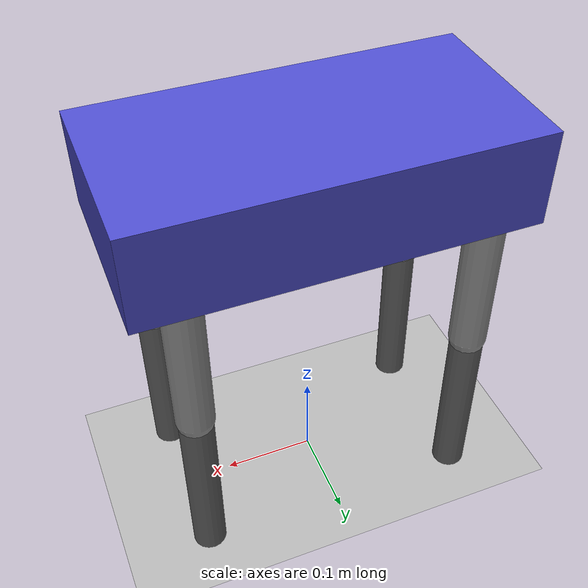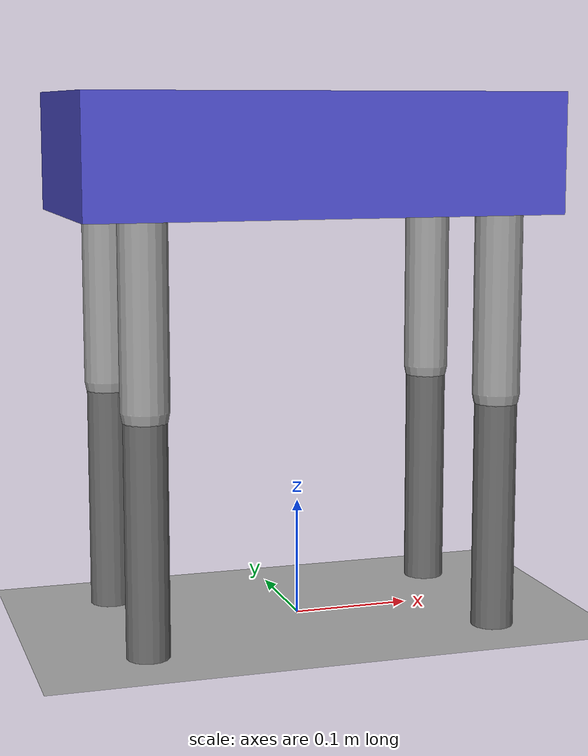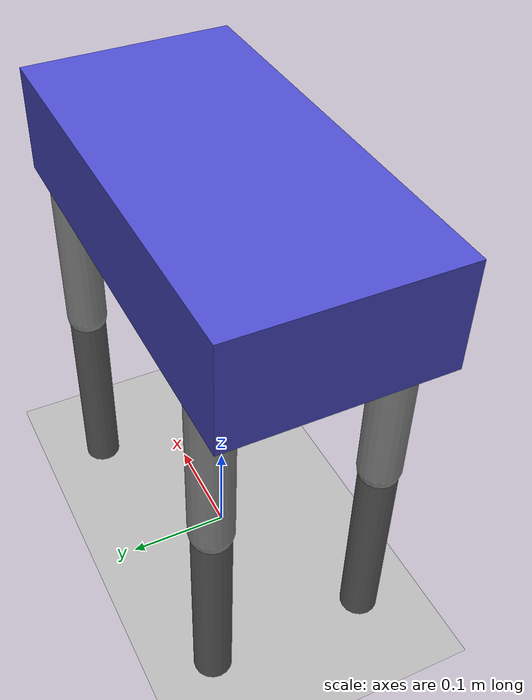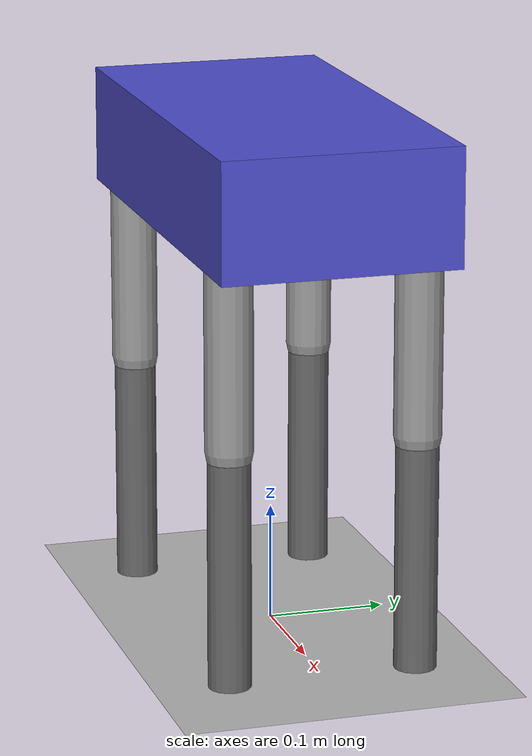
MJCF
<mujoco model="quadruped_balance">
  <!-- 场景5: 简化四足机器人站立平衡
       核心概念: 多点接触、力矩控制、姿态反馈(类似IMU读数)、地面反作用力
       每条腿2个自由度(髋+膝)，用PD位置控制器维持站立姿态 -->

  <!-- 同样必须声明angle="radian"，否则joint range会被误当作度数解析 -->
  <compiler angle="radian"/>

  <option timestep="0.002" gravity="0 0 -9.81" integrator="RK4"/>

  <default>
    <joint damping="0.3"/>
    <geom friction="1.2 0.05 0.001"/>
  </default>

  <worldbody>
    <light pos="0 0 3" dir="0 0 -1" diffuse="1 1 1"/>
    <geom name="floor" type="plane" size="2 2 0.1" rgba="0.7 0.7 0.7 1"/>

    <body name="torso" pos="0 0 0.4">
      <freejoint/>
      <geom type="box" size="0.2 0.1 0.05" mass="2.0" rgba="0.3 0.3 0.8 1"/>
      <site name="imu_site" pos="0 0 0" size="0.01"/>

      <!-- 四条腿，每条: 髋关节(hinge) + 膝关节(hinge) -->
      <body name="leg_fl" pos="0.15 0.08 0">
        <joint name="hip_fl" type="hinge" axis="0 1 0" range="-0.8 0.8"/>
        <geom type="capsule" fromto="0 0 0 0 0 -0.2" size="0.02" mass="0.15" rgba="0.6 0.6 0.6 1"/>
        <body name="shin_fl" pos="0 0 -0.2">
          <joint name="knee_fl" type="hinge" axis="0 1 0" range="-1.5 0"/>
          <geom type="capsule" fromto="0 0 0 0 0 -0.2" size="0.018" mass="0.1" rgba="0.4 0.4 0.4 1"/>
        </body>
      </body>

      <body name="leg_fr" pos="0.15 -0.08 0">
        <joint name="hip_fr" type="hinge" axis="0 1 0" range="-0.8 0.8"/>
        <geom type="capsule" fromto="0 0 0 0 0 -0.2" size="0.02" mass="0.15" rgba="0.6 0.6 0.6 1"/>
        <body name="shin_fr" pos="0 0 -0.2">
          <joint name="knee_fr" type="hinge" axis="0 1 0" range="-1.5 0"/>
          <geom type="capsule" fromto="0 0 0 0 0 -0.2" size="0.018" mass="0.1" rgba="0.4 0.4 0.4 1"/>
        </body>
      </body>

      <body name="leg_bl" pos="-0.15 0.08 0">
        <joint name="hip_bl" type="hinge" axis="0 1 0" range="-0.8 0.8"/>
        <geom type="capsule" fromto="0 0 0 0 0 -0.2" size="0.02" mass="0.15" rgba="0.6 0.6 0.6 1"/>
        <body name="shin_bl" pos="0 0 -0.2">
          <joint name="knee_bl" type="hinge" axis="0 1 0" range="-1.5 0"/>
          <geom type="capsule" fromto="0 0 0 0 0 -0.2" size="0.018" mass="0.1" rgba="0.4 0.4 0.4 1"/>
        </body>
      </body>

      <body name="leg_br" pos="-0.15 -0.08 0">
        <joint name="hip_br" type="hinge" axis="0 1 0" range="-0.8 0.8"/>
        <geom type="capsule" fromto="0 0 0 0 0 -0.2" size="0.02" mass="0.15" rgba="0.6 0.6 0.6 1"/>
        <body name="shin_br" pos="0 0 -0.2">
          <joint name="knee_br" type="hinge" axis="0 1 0" range="-1.5 0"/>
          <geom type="capsule" fromto="0 0 0 0 0 -0.2" size="0.018" mass="0.1" rgba="0.4 0.4 0.4 1"/>
        </body>
      </body>
    </body>
  </worldbody>

  <actuator>
    <position name="a_hip_fl" joint="hip_fl" kp="80"/>
    <position name="a_knee_fl" joint="knee_fl" kp="80"/>
    <position name="a_hip_fr" joint="hip_fr" kp="80"/>
    <position name="a_knee_fr" joint="knee_fr" kp="80"/>
    <position name="a_hip_bl" joint="hip_bl" kp="80"/>
    <position name="a_knee_bl" joint="knee_bl" kp="80"/>
    <position name="a_hip_br" joint="hip_br" kp="80"/>
    <position name="a_knee_br" joint="knee_br" kp="80"/>
  </actuator>

  <sensor>
    <!-- 模拟IMU: 读取躯干的姿态(四元数)和角速度 -->
    <framequat name="torso_orientation" objtype="body" objname="torso"/>
    <gyro name="torso_gyro" site="imu_site"/>
  </sensor>
</mujoco>
